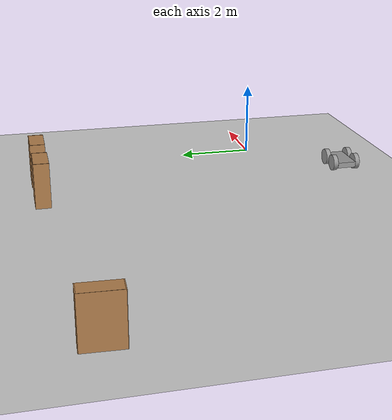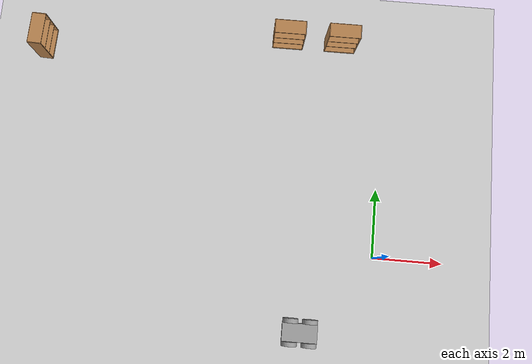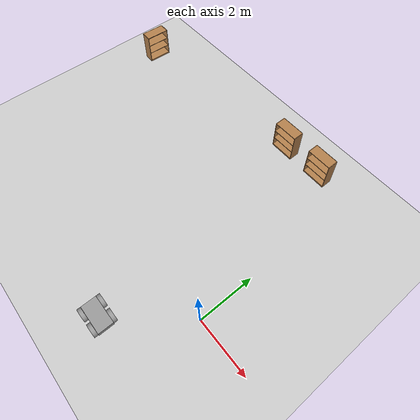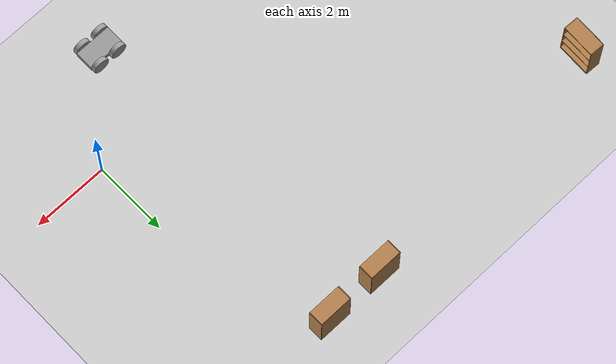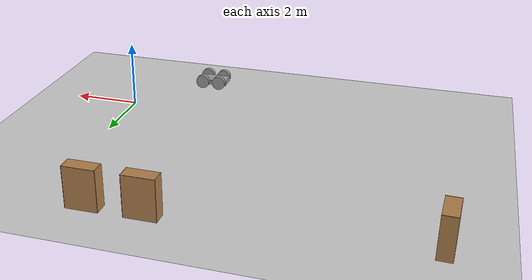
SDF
<sdf version="1.7">
 <world name="default">
  <model name="ground_plane">
   <static>1</static>
   <link name="link">
    <collision name="collision">
     <geometry><plane><normal>0 0 1</normal><size>100 100</size></plane></geometry>
     <surface>
      <contact><collide_bitmask>65535</collide_bitmask></contact>
      <friction><ode><mu>100</mu><mu2>50</mu2></ode></friction>
     </surface>
    </collision>
    <visual name="visual">
     <cast_shadows>0</cast_shadows>
     <geometry><plane><normal>0 0 1</normal><size>100 100</size></plane></geometry>
     <material>
      <script><uri>file://media/materials/scripts/gazebo.material</uri><name>Gazebo/Grey</name></script>
     </material>
    </visual>
   </link>
  </model>
  <model name="bookshelf_2">
   <static>1</static>
   <link name="link">
    <inertial><mass>1</mass></inertial>
    <collision name="back">
     <pose>0 0.005 0.6 0 -0 0</pose>
     <geometry><box><size>0.9 0.01 1.2</size></box></geometry>
    </collision>
    <visual name="visual1">
     <pose>0 0.005 0.6 0 -0 0</pose>
     <geometry><box><size>0.9 0.01 1.2</size></box></geometry>
     <material>
      <script><uri>file://media/materials/scripts/gazebo.material</uri><name>Gazebo/Wood</name></script>
     </material>
    </visual>
    <collision name="left_side">
     <pose>0.45 -0.195 0.6 0 -0 0</pose>
     <geometry><box><size>0.02 0.4 1.2</size></box></geometry>
    </collision>
    <visual name="visual2">
     <pose>0.45 -0.195 0.6 0 -0 0</pose>
     <geometry><box><size>0.02 0.4 1.2</size></box></geometry>
     <material>
      <script><uri>file://media/materials/scripts/gazebo.material</uri><name>Gazebo/Wood</name></script>
     </material>
    </visual>
    <collision name="right_side">
     <pose>-0.45 -0.195 0.6 0 -0 0</pose>
     <geometry><box><size>0.02 0.4 1.2</size></box></geometry>
    </collision>
    <visual name="visual3">
     <pose>-0.45 -0.195 0.6 0 -0 0</pose>
     <geometry><box><size>0.02 0.4 1.2</size></box></geometry>
     <material>
      <script><uri>file://media/materials/scripts/gazebo.material</uri><name>Gazebo/Wood</name></script>
     </material>
    </visual>
    <collision name="bottom">
     <pose>0 -0.195 0.03 0 -0 0</pose>
     <geometry><box><size>0.88 0.4 0.06</size></box></geometry>
    </collision>
    <visual name="visual4">
     <pose>0 -0.195 0.03 0 -0 0</pose>
     <geometry><box><size>0.88 0.4 0.06</size></box></geometry>
     <material>
      <script><uri>file://media/materials/scripts/gazebo.material</uri><name>Gazebo/Wood</name></script>
     </material>
    </visual>
    <collision name="top">
     <pose>0 -0.195 1.19 0 -0 0</pose>
     <geometry><box><size>0.88 0.4 0.02</size></box></geometry>
    </collision>
    <visual name="visual5">
     <pose>0 -0.195 1.19 0 -0 0</pose>
     <geometry><box><size>0.88 0.4 0.02</size></box></geometry>
     <material>
      <script><uri>file://media/materials/scripts/gazebo.material</uri><name>Gazebo/Wood</name></script>
     </material>
    </visual>
    <collision name="low_shelf">
     <pose>0 -0.195 0.43 0 -0 0</pose>
     <geometry><box><size>0.88 0.4 0.02</size></box></geometry>
    </collision>
    <visual name="visual6">
     <pose>0 -0.195 0.43 0 -0 0</pose>
     <geometry><box><size>0.88 0.4 0.02</size></box></geometry>
     <material>
      <script><uri>file://media/materials/scripts/gazebo.material</uri><name>Gazebo/Wood</name></script>
     </material>
    </visual>
    <collision name="high_shelf">
     <pose>0 -0.195 0.8 0 -0 0</pose>
     <geometry><box><size>0.88 0.4 0.02</size></box></geometry>
    </collision>
    <visual name="visual7">
     <pose>0 -0.195 0.8 0 -0 0</pose>
     <geometry><box><size>0.88 0.4 0.02</size></box></geometry>
     <material>
      <script><uri>file://media/materials/scripts/gazebo.material</uri><name>Gazebo/Wood</name></script>
     </material>
    </visual>
   </link>
   <pose>-2.89056 6.54728 0 0 -0 0</pose>
  </model>
  <model name="bookshelf">
   <static>1</static>
   <link name="link">
    <inertial><mass>1</mass></inertial>
    <collision name="back">
     <pose>0 0.005 0.6 0 -0 0</pose>
     <geometry><box><size>0.9 0.01 1.2</size></box></geometry>
    </collision>
    <visual name="visual1">
     <pose>0 0.005 0.6 0 -0 0</pose>
     <geometry><box><size>0.9 0.01 1.2</size></box></geometry>
     <material>
      <script><uri>file://media/materials/scripts/gazebo.material</uri><name>Gazebo/Wood</name></script>
     </material>
    </visual>
    <collision name="left_side">
     <pose>0.45 -0.195 0.6 0 -0 0</pose>
     <geometry><box><size>0.02 0.4 1.2</size></box></geometry>
    </collision>
    <visual name="visual2">
     <pose>0.45 -0.195 0.6 0 -0 0</pose>
     <geometry><box><size>0.02 0.4 1.2</size></box></geometry>
     <material>
      <script><uri>file://media/materials/scripts/gazebo.material</uri><name>Gazebo/Wood</name></script>
     </material>
    </visual>
    <collision name="right_side">
     <pose>-0.45 -0.195 0.6 0 -0 0</pose>
     <geometry><box><size>0.02 0.4 1.2</size></box></geometry>
    </collision>
    <visual name="visual3">
     <pose>-0.45 -0.195 0.6 0 -0 0</pose>
     <geometry><box><size>0.02 0.4 1.2</size></box></geometry>
     <material>
      <script><uri>file://media/materials/scripts/gazebo.material</uri><name>Gazebo/Wood</name></script>
     </material>
    </visual>
    <collision name="bottom">
     <pose>0 -0.195 0.03 0 -0 0</pose>
     <geometry><box><size>0.88 0.4 0.06</size></box></geometry>
    </collision>
    <visual name="visual4">
     <pose>0 -0.195 0.03 0 -0 0</pose>
     <geometry><box><size>0.88 0.4 0.06</size></box></geometry>
     <material>
      <script><uri>file://media/materials/scripts/gazebo.material</uri><name>Gazebo/Wood</name></script>
     </material>
    </visual>
    <collision name="top">
     <pose>0 -0.195 1.19 0 -0 0</pose>
     <geometry><box><size>0.88 0.4 0.02</size></box></geometry>
    </collision>
    <visual name="visual5">
     <pose>0 -0.195 1.19 0 -0 0</pose>
     <geometry><box><size>0.88 0.4 0.02</size></box></geometry>
     <material>
      <script><uri>file://media/materials/scripts/gazebo.material</uri><name>Gazebo/Wood</name></script>
     </material>
    </visual>
    <collision name="low_shelf">
     <pose>0 -0.195 0.43 0 -0 0</pose>
     <geometry><box><size>0.88 0.4 0.02</size></box></geometry>
    </collision>
    <visual name="visual6">
     <pose>0 -0.195 0.43 0 -0 0</pose>
     <geometry><box><size>0.88 0.4 0.02</size></box></geometry>
     <material>
      <script><uri>file://media/materials/scripts/gazebo.material</uri><name>Gazebo/Wood</name></script>
     </material>
    </visual>
    <collision name="high_shelf">
     <pose>0 -0.195 0.8 0 -0 0</pose>
     <geometry><box><size>0.88 0.4 0.02</size></box></geometry>
    </collision>
    <visual name="visual7">
     <pose>0 -0.195 0.8 0 -0 0</pose>
     <geometry><box><size>0.88 0.4 0.02</size></box></geometry>
     <material>
      <script><uri>file://media/materials/scripts/gazebo.material</uri><name>Gazebo/Wood</name></script>
     </material>
    </visual>
   </link>
   <pose>-1.31133 6.55446 0 0 -0 0</pose>
  </model>
  <model name="bookshelf_0">
   <static>1</static>
   <link name="link">
    <inertial><mass>1</mass></inertial>
    <collision name="back">
     <pose>0 0.005 0.6 0 -0 0</pose>
     <geometry><box><size>0.9 0.01 1.2</size></box></geometry>
    </collision>
    <visual name="visual1">
     <pose>0 0.005 0.6 0 -0 0</pose>
     <geometry><box><size>0.9 0.01 1.2</size></box></geometry>
     <material>
      <script><uri>file://media/materials/scripts/gazebo.material</uri><name>Gazebo/Wood</name></script>
     </material>
    </visual>
    <collision name="left_side">
     <pose>0.45 -0.195 0.6 0 -0 0</pose>
     <geometry><box><size>0.02 0.4 1.2</size></box></geometry>
    </collision>
    <visual name="visual2">
     <pose>0.45 -0.195 0.6 0 -0 0</pose>
     <geometry><box><size>0.02 0.4 1.2</size></box></geometry>
     <material>
      <script><uri>file://media/materials/scripts/gazebo.material</uri><name>Gazebo/Wood</name></script>
     </material>
    </visual>
    <collision name="right_side">
     <pose>-0.45 -0.195 0.6 0 -0 0</pose>
     <geometry><box><size>0.02 0.4 1.2</size></box></geometry>
    </collision>
    <visual name="visual3">
     <pose>-0.45 -0.195 0.6 0 -0 0</pose>
     <geometry><box><size>0.02 0.4 1.2</size></box></geometry>
     <material>
      <script><uri>file://media/materials/scripts/gazebo.material</uri><name>Gazebo/Wood</name></script>
     </material>
    </visual>
    <collision name="bottom">
     <pose>0 -0.195 0.03 0 -0 0</pose>
     <geometry><box><size>0.88 0.4 0.06</size></box></geometry>
    </collision>
    <visual name="visual4">
     <pose>0 -0.195 0.03 0 -0 0</pose>
     <geometry><box><size>0.88 0.4 0.06</size></box></geometry>
     <material>
      <script><uri>file://media/materials/scripts/gazebo.material</uri><name>Gazebo/Wood</name></script>
     </material>
    </visual>
    <collision name="top">
     <pose>0 -0.195 1.19 0 -0 0</pose>
     <geometry><box><size>0.88 0.4 0.02</size></box></geometry>
    </collision>
    <visual name="visual5">
     <pose>0 -0.195 1.19 0 -0 0</pose>
     <geometry><box><size>0.88 0.4 0.02</size></box></geometry>
     <material>
      <script><uri>file://media/materials/scripts/gazebo.material</uri><name>Gazebo/Wood</name></script>
     </material>
    </visual>
    <collision name="low_shelf">
     <pose>0 -0.195 0.43 0 -0 0</pose>
     <geometry><box><size>0.88 0.4 0.02</size></box></geometry>
    </collision>
    <visual name="visual6">
     <pose>0 -0.195 0.43 0 -0 0</pose>
     <geometry><box><size>0.88 0.4 0.02</size></box></geometry>
     <material>
      <script><uri>file://media/materials/scripts/gazebo.material</uri><name>Gazebo/Wood</name></script>
     </material>
    </visual>
    <collision name="high_shelf">
     <pose>0 -0.195 0.8 0 -0 0</pose>
     <geometry><box><size>0.88 0.4 0.02</size></box></geometry>
    </collision>
    <visual name="visual7">
     <pose>0 -0.195 0.8 0 -0 0</pose>
     <geometry><box><size>0.88 0.4 0.02</size></box></geometry>
     <material>
      <script><uri>file://media/materials/scripts/gazebo.material</uri><name>Gazebo/Wood</name></script>
     </material>
    </visual>
   </link>
   <pose>-10.3656 5.7332 0 0 -0 1.52719</pose>
  </model>
  <model name="wheeled_robot_0">
   <link name="link_0">
    <pose>-0 -0 -0.025902 0 -0 0</pose>
    <inertial>
     <mass>0.0772446</mass>
     <inertia>
      <ixx>0.00185631</ixx>
      <ixy>0</ixy>
      <ixz>0</ixz>
      <iyy>0.00652801</iyy>
      <iyz>0</iyz>
      <izz>0.00809275</izz>
     </inertia>
    </inertial>
    <visual name="visual">
     <geometry><box><size>0.995732 0.515491 0.150489</size></box></geometry>
     <material>
      <lighting>1</lighting>
      <script><uri>file://media/materials/scripts/gazebo.material</uri><name>Gazebo/Grey</name></script>
      <shader type="pixel"/>
      <ambient>0.3 0.3 0.3 1</ambient>
      <diffuse>0.7 0.7 0.7 1</diffuse>
      <specular>0.01 0.01 0.01 1</specular>
      <emissive>0 0 0 1</emissive>
     </material>
    </visual>
    <collision name="collision">
     <geometry><box><size>0.995732 0.515491 0.150489</size></box></geometry>
     <surface>
      <friction>
       <ode><mu>1</mu><mu2>1</mu2><fdir1>0 0 0</fdir1><slip1>0</slip1><slip2>0</slip2></ode>
       <torsional>
        <coefficient>1</coefficient>
        <patch_radius>0</patch_radius>
        <surface_radius>0</surface_radius>
        <use_patch_radius>1</use_patch_radius>
        <ode><slip>0</slip></ode>
       </torsional>
      </friction>
      <bounce><restitution_coefficient>0</restitution_coefficient><threshold>1e+06</threshold></bounce>
      <contact>
       <collide_without_contact>0</collide_without_contact>
       <collide_without_contact_bitmask>1</collide_without_contact_bitmask>
       <collide_bitmask>1</collide_bitmask>
       <ode>
        <soft_cfm>0</soft_cfm>
        <soft_erp>0.2</soft_erp>
        <kp>1e+13</kp>
        <kd>1</kd>
        <max_vel>0.01</max_vel>
        <min_depth>0</min_depth>
       </ode>
       <bullet>
        <split_impulse>1</split_impulse>
        <split_impulse_penetration_threshold>-0.01</split_impulse_penetration_threshold>
        <soft_cfm>0</soft_cfm>
        <soft_erp>0.2</soft_erp>
        <kp>1e+13</kp>
        <kd>1</kd>
       </bullet>
      </contact>
     </surface>
    </collision>
   </link>
   <link name="link_1">
    <pose>0.276969 -0.320255 0.006476 1.5708 -0 0</pose>
    <inertial>
     <mass>0.0244029</mass>
     <inertia>
      <ixx>0.00032947</ixx>
      <ixy>0</ixy>
      <ixz>0</ixz>
      <iyy>0.00032947</iyy>
      <iyz>0</iyz>
      <izz>0.00059538</izz>
     </inertia>
    </inertial>
    <visual name="visual">
     <geometry><cylinder><radius>0.220898</radius><length>0.125017</length></cylinder></geometry>
     <material>
      <lighting>1</lighting>
      <script><uri>file://media/materials/scripts/gazebo.material</uri><name>Gazebo/Grey</name></script>
      <shader type="pixel"><normal_map>__default__</normal_map></shader>
      <ambient>0.3 0.3 0.3 1</ambient>
      <diffuse>0.7 0.7 0.7 1</diffuse>
      <specular>0.01 0.01 0.01 1</specular>
      <emissive>0 0 0 1</emissive>
     </material>
    </visual>
    <collision name="collision">
     <geometry><cylinder><radius>0.220898</radius><length>0.125017</length></cylinder></geometry>
     <surface>
      <friction>
       <ode><mu>1</mu><mu2>1</mu2><fdir1>0 0 0</fdir1><slip1>0</slip1><slip2>0</slip2></ode>
       <torsional>
        <coefficient>1</coefficient>
        <patch_radius>0</patch_radius>
        <surface_radius>0</surface_radius>
        <use_patch_radius>1</use_patch_radius>
        <ode><slip>0</slip></ode>
       </torsional>
      </friction>
      <bounce><restitution_coefficient>0</restitution_coefficient><threshold>1e+06</threshold></bounce>
      <contact>
       <collide_without_contact>0</collide_without_contact>
       <collide_without_contact_bitmask>1</collide_without_contact_bitmask>
       <collide_bitmask>1</collide_bitmask>
       <ode>
        <soft_cfm>0</soft_cfm>
        <soft_erp>0.2</soft_erp>
        <kp>1e+13</kp>
        <kd>1</kd>
        <max_vel>0.01</max_vel>
        <min_depth>0</min_depth>
       </ode>
       <bullet>
        <split_impulse>1</split_impulse>
        <split_impulse_penetration_threshold>-0.01</split_impulse_penetration_threshold>
        <soft_cfm>0</soft_cfm>
        <soft_erp>0.2</soft_erp>
        <kp>1e+13</kp>
        <kd>1</kd>
       </bullet>
      </contact>
     </surface>
    </collision>
   </link>
   <link name="link_1_clone">
    <pose>-0.276969 -0.320255 0.006475 1.5708 -0 0</pose>
    <inertial>
     <mass>0.0244029</mass>
     <inertia>
      <ixx>0.00032947</ixx>
      <ixy>0</ixy>
      <ixz>0</ixz>
      <iyy>0.00032947</iyy>
      <iyz>0</iyz>
      <izz>0.00059538</izz>
     </inertia>
    </inertial>
    <visual name="visual">
     <geometry><cylinder><radius>0.220898</radius><length>0.125017</length></cylinder></geometry>
     <material>
      <lighting>1</lighting>
      <script><uri>file://media/materials/scripts/gazebo.material</uri><name>Gazebo/Grey</name></script>
      <shader type="pixel"><normal_map>__default__</normal_map></shader>
      <ambient>0.3 0.3 0.3 1</ambient>
      <diffuse>0.7 0.7 0.7 1</diffuse>
      <specular>0.01 0.01 0.01 1</specular>
      <emissive>0 0 0 1</emissive>
     </material>
    </visual>
    <collision name="collision">
     <geometry><cylinder><radius>0.220898</radius><length>0.125017</length></cylinder></geometry>
     <surface>
      <friction>
       <ode><mu>1</mu><mu2>1</mu2><fdir1>0 0 0</fdir1><slip1>0</slip1><slip2>0</slip2></ode>
       <torsional>
        <coefficient>1</coefficient>
        <patch_radius>0</patch_radius>
        <surface_radius>0</surface_radius>
        <use_patch_radius>1</use_patch_radius>
        <ode><slip>0</slip></ode>
       </torsional>
      </friction>
      <bounce><restitution_coefficient>0</restitution_coefficient><threshold>1e+06</threshold></bounce>
      <contact>
       <collide_without_contact>0</collide_without_contact>
       <collide_without_contact_bitmask>1</collide_without_contact_bitmask>
       <collide_bitmask>1</collide_bitmask>
       <ode>
        <soft_cfm>0</soft_cfm>
        <soft_erp>0.2</soft_erp>
        <kp>1e+13</kp>
        <kd>1</kd>
        <max_vel>0.01</max_vel>
        <min_depth>0</min_depth>
       </ode>
       <bullet>
        <split_impulse>1</split_impulse>
        <split_impulse_penetration_threshold>-0.01</split_impulse_penetration_threshold>
        <soft_cfm>0</soft_cfm>
        <soft_erp>0.2</soft_erp>
        <kp>1e+13</kp>
        <kd>1</kd>
       </bullet>
      </contact>
     </surface>
    </collision>
   </link>
   <link name="link_1_clone_0">
    <pose>0.276969 0.320255 0.006476 1.5708 -0 0</pose>
    <inertial>
     <mass>0.0244029</mass>
     <inertia>
      <ixx>0.00032947</ixx>
      <ixy>0</ixy>
      <ixz>0</ixz>
      <iyy>0.00032947</iyy>
      <iyz>0</iyz>
      <izz>0.00059538</izz>
     </inertia>
    </inertial>
    <visual name="visual">
     <geometry><cylinder><radius>0.220898</radius><length>0.125017</length></cylinder></geometry>
     <material>
      <lighting>1</lighting>
      <script><uri>file://media/materials/scripts/gazebo.material</uri><name>Gazebo/Grey</name></script>
      <shader type="pixel"><normal_map>__default__</normal_map></shader>
      <ambient>0.3 0.3 0.3 1</ambient>
      <diffuse>0.7 0.7 0.7 1</diffuse>
      <specular>0.01 0.01 0.01 1</specular>
      <emissive>0 0 0 1</emissive>
     </material>
    </visual>
    <collision name="collision">
     <geometry><cylinder><radius>0.220898</radius><length>0.125017</length></cylinder></geometry>
     <surface>
      <friction>
       <ode><mu>1</mu><mu2>1</mu2><fdir1>0 0 0</fdir1><slip1>0</slip1><slip2>0</slip2></ode>
       <torsional>
        <coefficient>1</coefficient>
        <patch_radius>0</patch_radius>
        <surface_radius>0</surface_radius>
        <use_patch_radius>1</use_patch_radius>
        <ode><slip>0</slip></ode>
       </torsional>
      </friction>
      <bounce><restitution_coefficient>0</restitution_coefficient><threshold>1e+06</threshold></bounce>
      <contact>
       <collide_without_contact>0</collide_without_contact>
       <collide_without_contact_bitmask>1</collide_without_contact_bitmask>
       <collide_bitmask>1</collide_bitmask>
       <ode>
        <soft_cfm>0</soft_cfm>
        <soft_erp>0.2</soft_erp>
        <kp>1e+13</kp>
        <kd>1</kd>
        <max_vel>0.01</max_vel>
        <min_depth>0</min_depth>
       </ode>
       <bullet>
        <split_impulse>1</split_impulse>
        <split_impulse_penetration_threshold>-0.01</split_impulse_penetration_threshold>
        <soft_cfm>0</soft_cfm>
        <soft_erp>0.2</soft_erp>
        <kp>1e+13</kp>
        <kd>1</kd>
       </bullet>
      </contact>
     </surface>
    </collision>
   </link>
   <link name="link_1_clone_1">
    <pose>-0.276969 0.320255 0.006476 1.5708 -0 0</pose>
    <inertial>
     <mass>0.0244029</mass>
     <inertia>
      <ixx>0.00032947</ixx>
      <ixy>0</ixy>
      <ixz>0</ixz>
      <iyy>0.00032947</iyy>
      <iyz>0</iyz>
      <izz>0.00059538</izz>
     </inertia>
    </inertial>
    <visual name="visual">
     <geometry><cylinder><radius>0.220898</radius><length>0.125017</length></cylinder></geometry>
     <material>
      <lighting>1</lighting>
      <script><uri>file://media/materials/scripts/gazebo.material</uri><name>Gazebo/Grey</name></script>
      <shader type="pixel"><normal_map>__default__</normal_map></shader>
      <ambient>0.3 0.3 0.3 1</ambient>
      <diffuse>0.7 0.7 0.7 1</diffuse>
      <specular>0.01 0.01 0.01 1</specular>
      <emissive>0 0 0 1</emissive>
     </material>
    </visual>
    <collision name="collision">
     <geometry><cylinder><radius>0.220898</radius><length>0.125017</length></cylinder></geometry>
     <surface>
      <friction>
       <ode><mu>1</mu><mu2>1</mu2><fdir1>0 0 0</fdir1><slip1>0</slip1><slip2>0</slip2></ode>
       <torsional>
        <coefficient>1</coefficient>
        <patch_radius>0</patch_radius>
        <surface_radius>0</surface_radius>
        <use_patch_radius>1</use_patch_radius>
        <ode><slip>0</slip></ode>
       </torsional>
      </friction>
      <bounce><restitution_coefficient>0</restitution_coefficient><threshold>1e+06</threshold></bounce>
      <contact>
       <collide_without_contact>0</collide_without_contact>
       <collide_without_contact_bitmask>1</collide_without_contact_bitmask>
       <collide_bitmask>1</collide_bitmask>
       <ode>
        <soft_cfm>0</soft_cfm>
        <soft_erp>0.2</soft_erp>
        <kp>1e+13</kp>
        <kd>1</kd>
        <max_vel>0.01</max_vel>
        <min_depth>0</min_depth>
       </ode>
       <bullet>
        <split_impulse>1</split_impulse>
        <split_impulse_penetration_threshold>-0.01</split_impulse_penetration_threshold>
        <soft_cfm>0</soft_cfm>
        <soft_erp>0.2</soft_erp>
        <kp>1e+13</kp>
        <kd>1</kd>
       </bullet>
      </contact>
     </surface>
    </collision>
   </link>
   <joint name="link_0_JOINT_0" type="revolute">
    <parent>link_0</parent>
    <child>link_1</child>
    <axis>
     <xyz>0 0 1</xyz>
     <limit>
      <lower>-1.79769e+308</lower>
      <upper>1.79769e+308</upper>
      <effort>-1</effort>
      <velocity>-1</velocity>
     </limit>
     <dynamics>
      <spring_reference>0</spring_reference>
      <spring_stiffness>0</spring_stiffness>
      <damping>0</damping>
     </dynamics>
    </axis>
    <physics>
     <ode><limit><cfm>0</cfm><erp>0.2</erp></limit><suspension><cfm>0</cfm><erp>0.2</erp></suspension></ode>
    </physics>
   </joint>
   <joint name="link_0_JOINT_1" type="revolute">
    <parent>link_0</parent>
    <child>link_1_clone</child>
    <axis>
     <xyz>0 0 1</xyz>
     <limit>
      <lower>-1.79769e+308</lower>
      <upper>1.79769e+308</upper>
      <effort>-1</effort>
      <velocity>-1</velocity>
     </limit>
     <dynamics>
      <spring_reference>0</spring_reference>
      <spring_stiffness>0</spring_stiffness>
      <damping>0</damping>
     </dynamics>
    </axis>
    <physics>
     <ode><limit><cfm>0</cfm><erp>0.2</erp></limit><suspension><cfm>0</cfm><erp>0.2</erp></suspension></ode>
    </physics>
   </joint>
   <joint name="link_0_JOINT_2" type="revolute">
    <parent>link_0</parent>
    <child>link_1_clone_0</child>
    <axis>
     <xyz>0 0 1</xyz>
     <limit>
      <lower>-1.79769e+308</lower>
      <upper>1.79769e+308</upper>
      <effort>-1</effort>
      <velocity>-1</velocity>
     </limit>
     <dynamics>
      <spring_reference>0</spring_reference>
      <spring_stiffness>0</spring_stiffness>
      <damping>0</damping>
     </dynamics>
    </axis>
    <physics>
     <ode><limit><cfm>0</cfm><erp>0.2</erp></limit><suspension><cfm>0</cfm><erp>0.2</erp></suspension></ode>
    </physics>
   </joint>
   <joint name="link_0_JOINT_3" type="revolute">
    <parent>link_0</parent>
    <child>link_1_clone_1</child>
    <axis>
     <xyz>0 0 1</xyz>
     <limit>
      <lower>-1.79769e+308</lower>
      <upper>1.79769e+308</upper>
      <effort>-1</effort>
      <velocity>-1</velocity>
     </limit>
     <dynamics>
      <spring_reference>0</spring_reference>
      <spring_stiffness>0</spring_stiffness>
      <damping>0</damping>
     </dynamics>
    </axis>
    <physics>
     <ode><limit><cfm>0</cfm><erp>0.2</erp></limit><suspension><cfm>0</cfm><erp>0.2</erp></suspension></ode>
    </physics>
   </joint>
   <static>0</static>
   <pose>-1.98245 -2.24103 0.214422 -1e-06 1e-06 -0.002627</pose>
  </model>
 </world>
</sdf>
